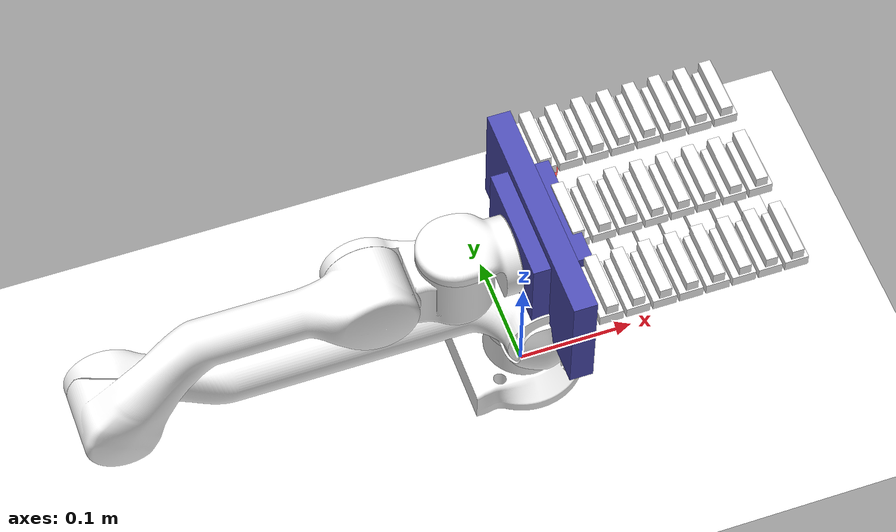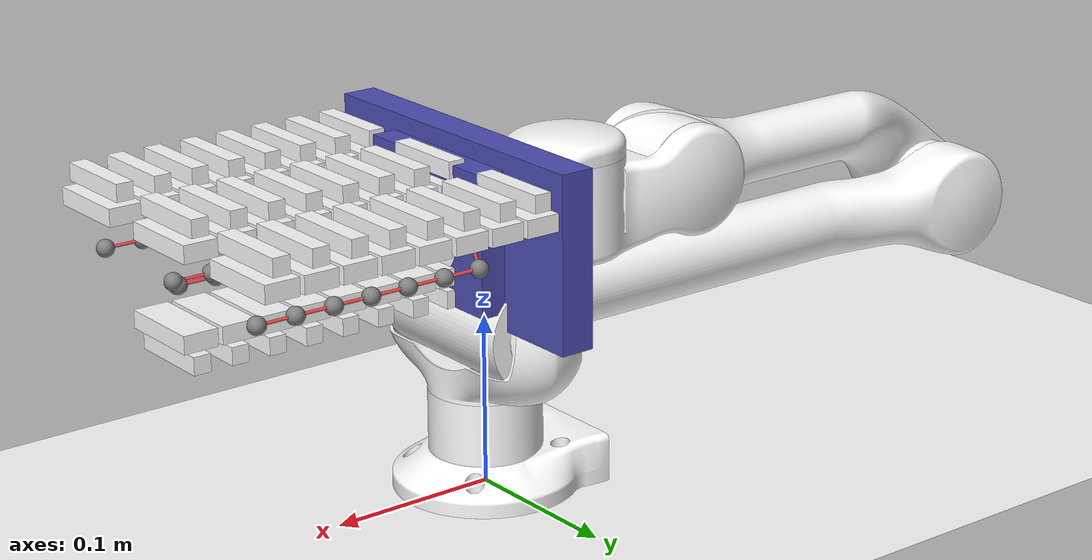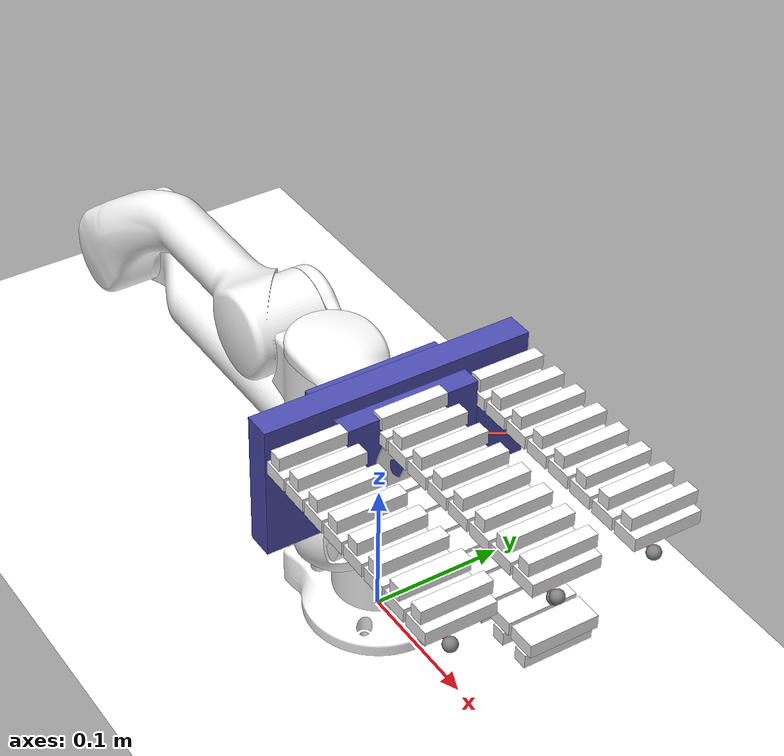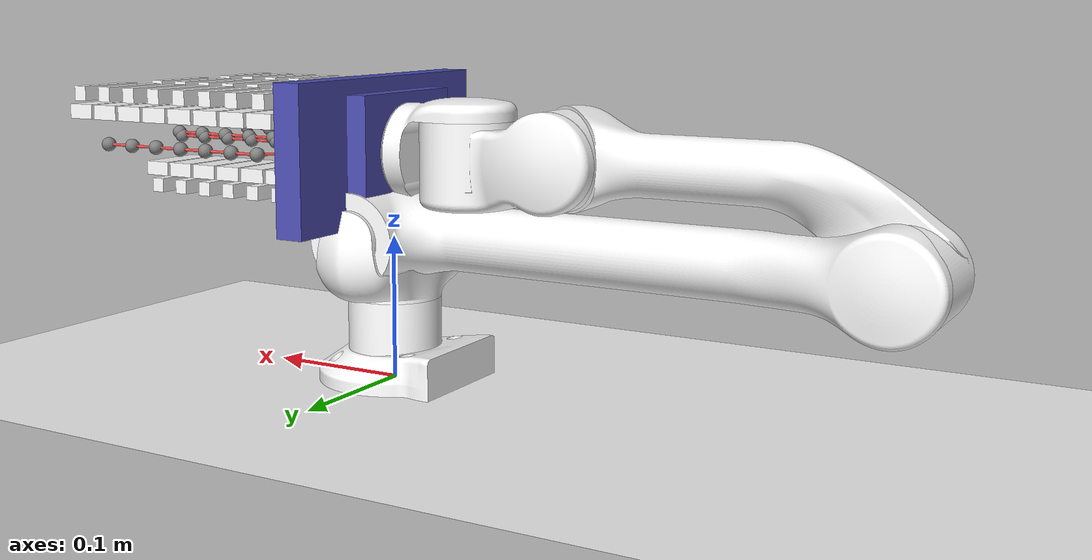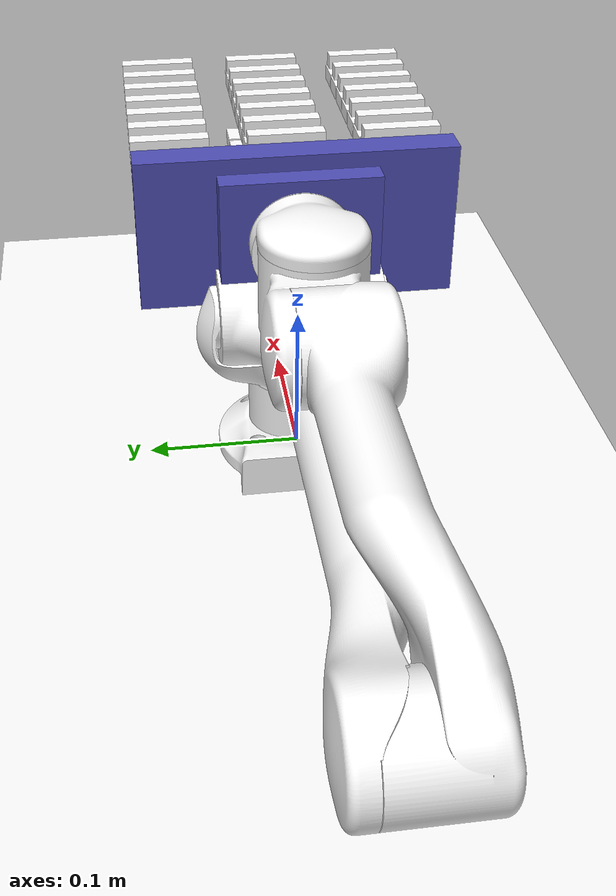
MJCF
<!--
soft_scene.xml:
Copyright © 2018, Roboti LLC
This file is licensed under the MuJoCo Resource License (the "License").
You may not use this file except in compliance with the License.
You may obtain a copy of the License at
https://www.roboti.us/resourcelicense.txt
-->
<mujoco model="z1_with_soft_gripper">

    <compiler angle="radian" meshdir="assets"/>

    <option integrator="implicitfast"/>

    <include file="soft_scene.xml"/>

    <default>
        <default class="z1">
        <joint damping="1" frictionloss="1"/>
        <general biastype="affine" gainprm="1000" biasprm="0 -1000 -100" forcerange="-30 30"/>
        <default class="visual">
            <geom type="mesh" group="2" contype="1" conaffinity="1"/>
        </default>
        <default class="collision">
            <geom type="cylinder" group="3" mass="0" density="0"/>
        </default>
    </default>

    <!-- Soft Gripper Defaults -->
    <geom density="1" contype="1" conaffinity="1" rgba=".99 .99 .99 1" group="1"/>
    <joint limited="true"/>
    <site type="sphere" size="0.005"/>
    <tendon width="0.001"/>

    <default class="gripper_sticks_main">
      <geom type="box" size="0.01 0.005 0.025" mass="0.01" contype="1" conaffinity="1"/>
    </default>

    <default class="finger_left_util">
      <joint type="hinge" range="-0.2 0.05" damping="2"/>
        <site pos="0 -0.025 0"/>
        <geom type="box" pos="0 0.0125 0" size="0.005 0.005 0.025" mass="0.005" contype="1" conaffinity="1"/>
    </default>

    <default class="finger_right_util">
      <joint type="hinge" range="-0.05 0.2" damping="2"/>
      <site pos="0 0.025 0"/>
      <geom type="box" pos="0 -0.0125 0" size="0.005 0.005 0.025" mass="0.005" contype="1" conaffinity="1"/>
    </default>

    <default class="finger_adduction">
        <joint type="hinge" axis="0 1 0" damping="2" stiffness="2" limited="true" range="-0.01 0.01"/>
    </default>

    <default class="finger_twist">
        <joint type="hinge" axis="1 0 0" damping="2" stiffness="2" limited="true" range="-0.01 0.01"/>
    </default>

    <default class="base">
        <geom type="box" quat="0.7 0.7 0.7 0.7" rgba="0.3 0.3 0.7 1" size="0.05 0.04 0.01"/>
    </default>
  </default>

  <asset>
    <mesh file="z1_Link00.stl"/>
    <mesh file="z1_Link01.stl"/>
    <mesh file="z1_Link02.stl"/>
    <mesh file="z1_Link03.stl"/>
    <mesh file="z1_Link04.stl"/>
    <mesh file="z1_Link05.stl"/>
    <mesh file="z1_Link06.stl"/>
  </asset>

  <worldbody>
    <body name="link00" childclass="z1">
      <inertial pos="-0.00334984 -0.00013615 0.0249584" quat="-0.00692194 0.682592 0.00133293 0.730766" mass="0.472475"
        diaginertia="0.000531375 0.000415207 0.000378658"/>
      <geom class="visual" mesh="z1_Link00"/>
      <geom size="0.0325 0.0255" pos="0 0 0.0255" class="collision"/>
      <body name="link01" pos="0 0 0.0585">
        <inertial pos="2.47e-06 -0.00025198 0.0231717" quat="0.708578 0.705633 0.000281462 -0.000355927" mass="0.673326"
          diaginertia="0.00128328 0.000839362 0.000719308"/>
        <joint name="joint1" axis="0 0 1" range="-2.61799 2.61799"/>
        <geom class="visual" mesh="z1_Link01"/>
        <body name="link02" pos="0 0 0.045">
          <inertial pos="-0.110126 0.00240029 0.00158266" quat="0.00748058 0.707092 -0.0114473 0.70699" mass="1.19132"
            diaginertia="0.0246612 0.0243113 0.00100468"/>
          <joint name="joint2" axis="0 1 0" range="0 2.96706" damping="2"/>
          <geom class="visual" mesh="z1_Link02"/>
          <geom size="0.0325 0.051" quat="1 1 0 0" class="collision"/>
          <geom size="0.0225 0.1175" pos="-0.1625 0 0" quat="1 0 1 0" class="collision"/>
          <geom size="0.0325 0.0255" pos="-0.35 0 0" quat="1 1 0 0" class="collision"/>
          <body name="link03" pos="-0.35 0 0">
            <inertial pos="0.106092 -0.00541815 0.0347638" quat="0.540557 0.443575 0.426319 0.573839" mass="0.839409"
              diaginertia="0.00954365 0.00938711 0.000558432"/>
            <joint name="joint3" axis="0 1 0" range="-2.87979 0"/>
            <geom class="visual" mesh="z1_Link03"/>
            <geom size="0.02 0.058" pos="0.128 0 0.055" quat="1 0 1 0" class="collision"/>
            <geom size="0.0325 0.0295" pos="0.2205 0 0.055" quat="0.5 -0.5 0.5 0.5" class="collision"/>
            <body name="link04" pos="0.218 0 0.057">
              <inertial pos="0.0436668 0.00364738 -0.00170192" quat="0.0390835 0.726445 -0.0526787 0.684087"
                mass="0.564046" diaginertia="0.000981656 0.00094053 0.000302655"/>
              <joint name="joint4" axis="0 1 0" range="-1.51844 1.51844"/>
              <geom class="visual" mesh="z1_Link04"/>
              <geom size="0.0325 0.0335" pos="0.072 0 0" class="collision"/>
              <body name="link05" pos="0.07 0 0">
                <inertial pos="0.0312153 0 0.00646316" quat="0.462205 0.535209 0.53785 0.45895" mass="0.389385"
                  diaginertia="0.000558961 0.000547317 0.000167332"/>
                <joint name="joint5" axis="0 0 1" range="-1.3439 1.3439"/>
                <geom class="visual" mesh="z1_Link05"/>
                <body name="link06" pos="0.0492 0 0">
                  <inertial pos="0.0241569 -0.00017355 -0.00143876" quat="0.998779 0.0457735 -0.00663717 0.0173548"
                    mass="0.288758" diaginertia="0.00018333 0.000147464 0.000146786"/>
                  <joint name="joint6" axis="1 0 0" range="-2.79253 2.79253"/>
                  <geom class="visual" mesh="z1_Link06"/>
                  <geom size="0.0325 0.0255" pos="0.0255 0 0" quat="1 0 1 0" class="collision"/>

                  <!-- Attach Soft Gripper Here -->
                  <body name="base" pos="0.0255 0 0" quat="0 0 1 0">
                    <site name="sBase" pos="0 0 0"/>
                    <geom class="base" size="0.05 0.04 0.01" pos="0 0 0"/>
                    <geom class="base" size="0.1 0.05 0.01" pos="0 0 0"/>
                    <geom class="base" size="0.05 0.04 0.025" pos="0 0 0"/>

                    <!-- FINGERS LEFT -->
                    <body pos="0 0.075 -0.025" quat="0 0 -0.7071 0.7071">
                      <body pos="0.0225 0 0">
                        <geom class="gripper_sticks_main" name="g11"/>
                        <geom class="finger_left_util"/>
                        <joint name="joint7" class="finger_adduction"/>
                        <joint name="joint8" class="finger_twist"/>
                        <body pos="0.0225 0 0">
                          <geom class="gripper_sticks_main" name="g112"/>
                          <geom class="finger_left_util"/>
                          <joint name="joint9" class="finger_left_util"/>
                          <joint name="joint10" class="finger_twist"/>
                          <site name="s112" class="finger_left_util" size="0.005"/>
                          <body pos="0.0225 0 0">
                            <geom class="gripper_sticks_main" name="g113"/>
                            <geom class="finger_left_util"/>
                            <joint name="joint11" class="finger_left_util"/>
                            <joint name="joint12" class="finger_twist"/>
                            <site name="s113" class="finger_left_util" size="0.005"/>
                            <body pos="0.0225 0 0">
                              <geom class="gripper_sticks_main" name="g114"/>
                              <geom class="finger_left_util"/>
                              <joint name="joint13" class="finger_left_util"/>
                              <joint name="joint14" class="finger_twist"/>
                              <site name="s114" class="finger_left_util" size="0.005"/>
                              <body pos="0.0225 0 0">
                                <geom class="gripper_sticks_main" name="g115"/>
                                <geom class="finger_left_util"/>
                                <joint name="joint15" class="finger_left_util"/>
                                <joint name="joint16" class="finger_twist"/>
                                <site name="s115" class="finger_left_util" size="0.005"/>
                                <body pos="0.0225 0 0">
                                  <geom class="gripper_sticks_main" name="g116"/>
                                  <geom class="finger_left_util"/>
                                  <joint name="joint17" class="finger_left_util"/>
                                  <joint name="joint18" class="finger_twist"/>
                                  <site name="s116" class="finger_left_util" size="0.005"/>
                                  <body pos="0.0225 0 0">
                                    <geom class="gripper_sticks_main" name="g117"/>
                                    <geom class="finger_left_util"/>
                                    <joint name="joint19" class="finger_left_util"/>
                                    <joint name="joint20" class="finger_twist"/>
                                    <site name="s117" class="finger_left_util" size="0.005"/>
                                    <body pos="0.0225 0 0">
                                      <geom class="gripper_sticks_main" name="g118"/>
                                      <geom class="finger_left_util"/>
                                      <joint name="joint21" class="finger_left_util"/>
                                      <joint name="joint22" class="finger_twist"/>
                                      <site name="s118" class="finger_left_util" size="0.005"/>
                                    </body>
                                  </body>
                                </body>
                              </body>
                            </body>
                          </body>
                        </body>
                      </body>
                    </body>
                    <body pos="0 0 -0.025" quat="0 0 -0.7071 0.7071">
                      <body pos="0.0225 0 0">
                        <geom class="gripper_sticks_main" name="g121"/>
                        <geom class="finger_left_util"/>
                        <joint name="joint23" class="finger_adduction"/>
                        <joint name="joint24" class="finger_twist"/>
                        <body pos="0.0225 0 0">
                          <geom class="gripper_sticks_main" name="g122"/>
                          <geom class="finger_left_util"/>
                          <joint name="joint25" class="finger_left_util"/>
                          <joint name="joint26" class="finger_twist"/>
                          <site name="s122" class="finger_left_util" size="0.005"/>
                          <body pos="0.0225 0 0">
                            <geom class="gripper_sticks_main" name="g123"/>
                            <geom class="finger_left_util"/>
                            <joint name="joint27" class="finger_left_util"/>
                            <joint name="joint28" class="finger_twist"/>
                            <site name="s123" class="finger_left_util" size="0.005"/>
                            <body pos="0.0225 0 0">
                              <geom class="gripper_sticks_main" name="g124"/>
                              <geom class="finger_left_util"/>
                              <joint name="joint29" class="finger_left_util"/>
                              <joint name="joint30" class="finger_twist"/>
                              <site name="s124" class="finger_left_util" size="0.005"/>
                              <body pos="0.0225 0 0">
                                <geom class="gripper_sticks_main" name="g125"/>
                                <geom class="finger_left_util"/>
                                <joint name="joint31" class="finger_left_util"/>
                                <joint name="joint32" class="finger_twist"/>
                                <site name="s125" class="finger_left_util" size="0.005"/>
                                <body pos="0.0225 0 0">
                                  <geom class="gripper_sticks_main" name="g126"/>
                                  <geom class="finger_left_util"/>
                                  <joint name="joint33" class="finger_left_util"/>
                                  <joint name="joint34" class="finger_twist"/>
                                  <site name="s126" class="finger_left_util" size="0.005"/>
                                  <body pos="0.0225 0 0">
                                    <geom class="gripper_sticks_main" name="g127"/>
                                    <geom class="finger_left_util"/>
                                    <joint name="joint35" class="finger_left_util"/>
                                    <joint name="joint36" class="finger_twist"/>
                                    <site name="s127" class="finger_left_util" size="0.005"/>
                                    <body pos="0.0225 0 0">
                                      <geom class="gripper_sticks_main" name="g128"/>
                                      <geom class="finger_left_util"/>
                                      <joint name="joint37" class="finger_left_util"/>
                                      <joint name="joint38" class="finger_twist"/>
                                      <site name="s128" class="finger_left_util" size="0.005"/>
                                    </body>
                                  </body>
                                </body>
                              </body>
                            </body>
                          </body>
                        </body>
                      </body>
                    </body>
                    <body pos="0 -0.075 -0.025" quat="0 0 -0.7071 0.7071">
                      <body pos="0.0225 0 0">
                        <geom class="gripper_sticks_main" name="g131"/>
                        <geom class="finger_left_util"/>
                        <joint name="joint39" class="finger_adduction"/>
                        <joint name="joint40" class="finger_twist"/>
                        <body pos="0.0225 0 0">
                          <geom class="gripper_sticks_main" name="g132"/>
                          <geom class="finger_left_util"/>
                          <joint name="joint41" class="finger_left_util"/>
                          <site name="s132" class="finger_left_util" size="0.005"/>
                          <joint name="joint42" class="finger_twist"/>
                          <body pos="0.0225 0 0">
                            <geom class="gripper_sticks_main" name="g133"/>
                            <geom class="finger_left_util"/>
                            <joint name="joint43" class="finger_left_util"/>
                            <joint name="joint44" class="finger_twist"/>
                            <site name="s133" class="finger_left_util" size="0.005"/>
                            <body pos="0.0225 0 0">
                              <geom class="gripper_sticks_main" name="g134"/>
                              <geom class="finger_left_util"/>
                              <joint name="joint45" class="finger_left_util"/>
                              <joint name="joint46" class="finger_twist"/>
                              <site name="s134" class="finger_left_util" size="0.005"/>
                              <body pos="0.0225 0 0">
                                <geom class="gripper_sticks_main" name="g135"/>
                                <geom class="finger_left_util"/>
                                <joint name="joint47" class="finger_left_util"/>
                                <joint name="joint48" class="finger_twist"/>
                                <site name="s135" class="finger_left_util" size="0.005"/>
                                <body pos="0.0225 0 0">
                                  <geom class="gripper_sticks_main" name="g136"/>
                                  <geom class="finger_left_util"/>
                                  <joint name="joint49" class="finger_left_util"/>
                                  <joint name="joint50" class="finger_twist"/>
                                  <site name="s136" class="finger_left_util" size="0.005"/>
                                  <body pos="0.0225 0 0">
                                    <geom class="gripper_sticks_main" name="g137"/>
                                    <geom class="finger_left_util"/>
                                    <joint name="joint51" class="finger_left_util"/>
                                    <joint name="joint52" class="finger_twist"/>
                                    <site name="s137" class="finger_left_util" size="0.005"/>
                                    <body pos="0.0225 0 0">
                                      <geom class="gripper_sticks_main" name="g138"/>
                                      <geom class="finger_left_util"/>
                                      <joint name="joint53" class="finger_left_util"/>
                                      <joint name="joint54" class="finger_twist"/>
                                      <site name="s138" class="finger_left_util" size="0.005"/>
                                    </body>
                                  </body>
                                </body>
                              </body>
                            </body>
                          </body>
                        </body>
                      </body>
                    </body>

                    <!-- FINGER RIGHT -->
                    <body pos="0 0 .0225" quat="0 0 -0.7071 0.7071">
                      <body pos="0.025 0 0">
                        <geom class="gripper_sticks_main" name="g21"/>
                        <geom class="finger_right_util"/>
                        <joint name="joint55" class="finger_right_util"/>
                        <joint name="joint56" class="finger_adduction"/>
                        <joint name="joint57" class="finger_twist"/>
                        <body pos="0.0225 0 0">
                          <geom class="gripper_sticks_main" name="g22"/>
                          <geom class="finger_right_util"/>
                          <joint name="joint58"  class="finger_right_util"/>
                          <joint name="joint59"  class="finger_twist"/>
                          <site name="s22" class="finger_right_util" size="0.005"/>
                          <body pos="0.0225 0 0">
                            <geom class="gripper_sticks_main" name="g23"/>
                            <geom class="finger_right_util"/>
                            <joint name="joint60"  class="finger_right_util"/>
                            <joint name="joint61" class="finger_twist"/>
                            <site name="s23" class="finger_right_util" size="0.005"/>
                            <body pos="0.0225 0 0">
                              <geom class="gripper_sticks_main" name="g24"/>
                              <geom class="finger_right_util"/>
                              <joint name="joint62" class="finger_right_util"/>
                              <joint name="joint63" class="finger_twist"/>
                              <site name="s24" class="finger_right_util" size="0.005"/>
                              <body pos="0.0225 0 0">
                                <geom class="gripper_sticks_main" name="g25"/>
                                <geom class="finger_right_util"/>
                                <joint name="joint64" class="finger_right_util"/>
                                <joint name="joint65" class="finger_twist"/>
                                <site name="s25" class="finger_right_util" size="0.005"/>
                                <body pos="0.0225 0 0">
                                  <geom class="gripper_sticks_main" name="g26"/>
                                  <geom class="finger_right_util"/>
                                  <joint name="joint66" class="finger_right_util"/>
                                  <joint name="joint67" class="finger_twist"/>
                                  <site name="s26" class="finger_right_util" size="0.005"/>
                                  <body pos="0.0225 0 0">
                                    <geom class="gripper_sticks_main" name="g27"/>
                                    <geom class="finger_right_util"/>
                                    <joint name="joint68" class="finger_right_util"/>
                                    <joint name="joint69" class="finger_twist"/>
                                    <site name="s27" class="finger_right_util" size="0.005"/>
                                    <body pos="0.0225 0 0">
                                      <geom class="gripper_sticks_main" name="g28"/>
                                      <geom class="finger_right_util"/>
                                      <joint name="joint70" class="finger_right_util"/>
                                      <joint name="joint71" class="finger_twist"/>
                                      <site name="s28" class="finger_right_util" size="0.005"/>
                                    </body>
                                  </body>
                                </body>
                              </body>
                            </body>
                          </body>
                        </body>
                      </body>
                    </body>
                  </body>
                </body>
              </body>
            </body>
          </body>
        </body>
      </body>
    </body>
  </worldbody>

  <!-- TENDONS -->
  <tendon>
    <spatial name="grip_l_11" width="0.001" rgba=".95 .3 .3 1">
      <site site="sBase"/>
      <site site="s112"/>
      <site site="s113"/>
      <site site="s114"/>
      <site site="s115"/>
      <site site="s116"/>
      <site site="s117"/>
      <site site="s118"/>
    </spatial>

    <spatial name="grip_l_12" width="0.001" rgba=".95 .3 .3 1">
      <site site="sBase"/>
      <site site="s122"/>
      <site site="s123"/>
      <site site="s124"/>
      <site site="s125"/>
      <site site="s126"/>
      <site site="s127"/>
      <site site="s128"/>
    </spatial>

    <spatial name="grip_l_13" width="0.001" rgba=".95 .3 .3 1">
      <site site="sBase"/>
      <site site="s132"/>
      <site site="s133"/>
      <site site="s134"/>
      <site site="s135"/>
      <site site="s136"/>
      <site site="s137"/>
      <site site="s138"/>
    </spatial>

    <spatial name="grip_r_21" width="0.001" rgba=".95 .3 .3 1">
      <site site="sBase"/>
      <site site="s22"/>
      <site site="s23"/>
      <site site="s24"/>
      <site site="s25"/>
      <site site="s26"/>
      <site site="s27"/>
      <site site="s28"/>
    </spatial>
  </tendon>

  <!-- ACTUATORS -->
  <actuator>
    <general class="z1" name="motor1" joint="joint1" ctrlrange="-2.61799 2.61799"/>
    <general class="z1" name="motor2" joint="joint2" ctrlrange="0 2.96706" forcerange="-60 60" gainprm="1500"
      biasprm="0 -1500 -150"/>
    <general class="z1" name="motor3" joint="joint3" ctrlrange="-2.87979 0"/>
    <general class="z1" name="motor4" joint="joint4" ctrlrange="-1.51844 1.51844"/>
    <general class="z1" name="motor5" joint="joint5" ctrlrange="-1.3439 1.3439"/>
    <general class="z1" name="motor6" joint="joint6" ctrlrange="-2.79253 2.79253"/>

    <!-- Soft Gripper Actuators -->
    <cylinder tendon="grip_l_11" area="300"/>
    <cylinder tendon="grip_l_12" area="300"/>
    <cylinder tendon="grip_l_13" area="300"/>
    <cylinder tendon="grip_r_21" area="300"/>
  </actuator>

  <!-- SENSORS -->
  <sensor>
    <accelerometer name="a11_sensor" site="s116"/>
    <accelerometer name="a12_sensor" site="s126"/>
    <accelerometer name="a13_sensor" site="s136"/>
    <accelerometer name="a21_sensor" site="s26"/>

    <gyro name="g11_sensor" site="s116"/>
    <gyro name="g12_sensor" site="s126"/>
    <gyro name="g13_sensor" site="s136"/>
    <gyro name="g21_sensor" site="s26"/>
  </sensor>

</mujoco>

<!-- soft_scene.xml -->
<mujoco>

    <statistic extent="2" meansize=".05"/>

    <option timestep="0.005" solver="PGS" iterations="30" tolerance="1e-7" cone="elliptic"/>

    <visual>
        <rgba haze="0.35 0.45 0.55 1"/>
        <quality shadowsize="2048"/>
        <map stiffness="700" shadowscale="0.5" fogstart="10" fogend="15" zfar="40" haze="0.3"/>
    </visual>

    <asset>
        <texture type="skybox" builtin="gradient" rgb1="0.3 0.5 0.7" rgb2="0 0 0" width="512" height="512"/>
        <texture name="texplane" type="2d" builtin="checker" rgb1=".2 .3 .4" rgb2=".1 0.15 0.2"
            width="512" height="512" mark="cross" markrgb=".8 .8 .8"/>

        <texture name="textennis" type="2d" file="tennis.png"/>

        <material name="matplane" reflectance="0.05" texture="texplane" texrepeat="1 1" texuniform="true"/>

        <material name="mattennis" texture="textennis"/>
    </asset>

    <worldbody>
        <light directional="true" diffuse=".4 .4 .4" specular="0.1 0.1 0.1" pos="0 0 5.0" dir="0 0 -1" castshadow="false"/>
        <light directional="true" diffuse=".6 .6 .6" specular="0.2 0.2 0.2" pos="0 0 4" dir="0 0 -1"/>

        <geom name="ground" type="plane" size="0 0 1" pos="0 0 0" quat="1 0 0 0" material="matplane" condim="1"/>

    </worldbody>
</mujoco>
